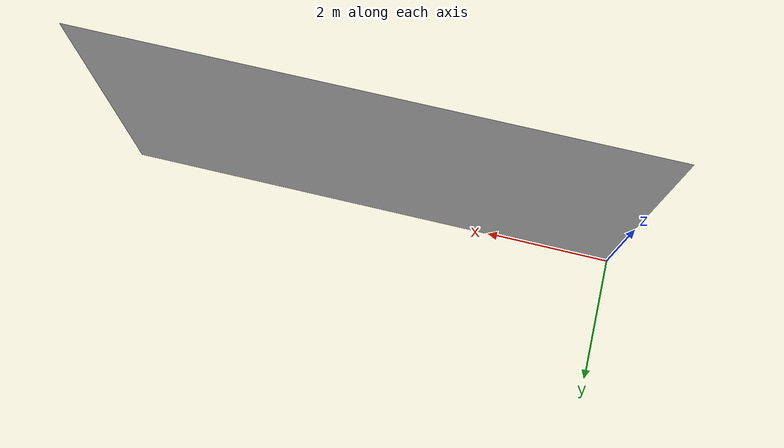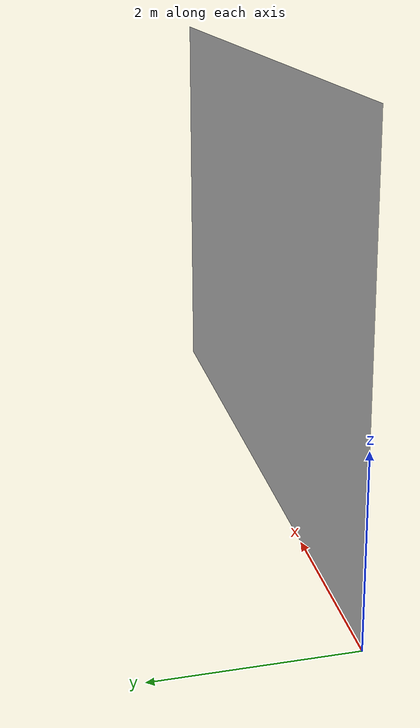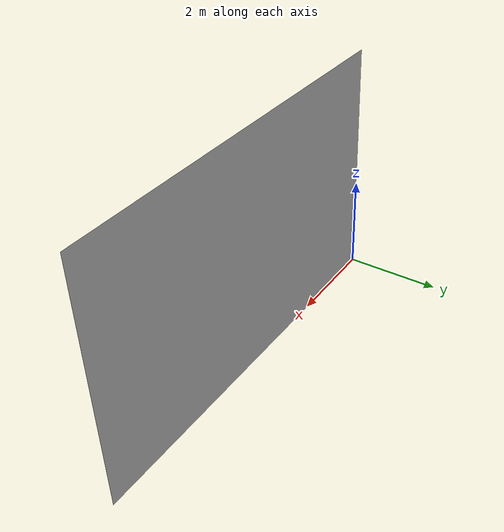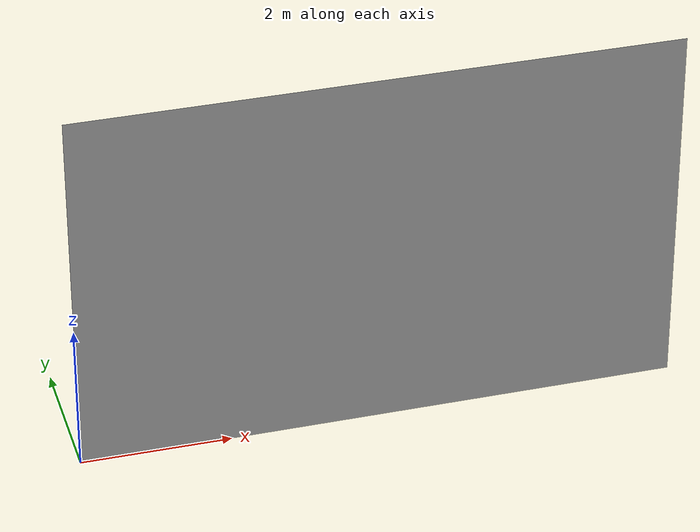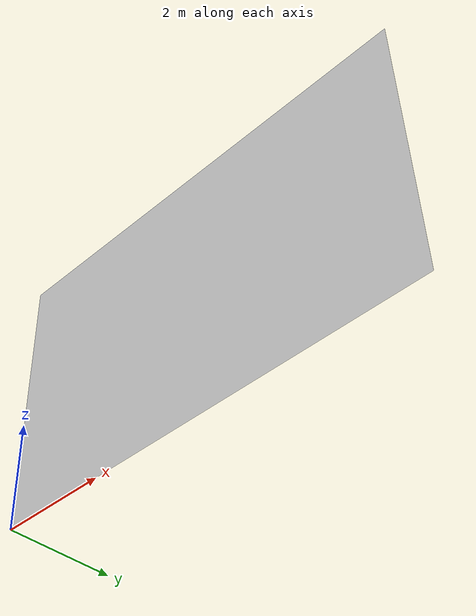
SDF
<?xml version='1.0'?>
<sdf version='1.6'>
  <model name='banner_2'>
    <link name='link_0'>
      <inertial>
        <mass>1</mass>
        <inertia>
          <ixx>0.166667</ixx>
          <ixy>0</ixy>
          <ixz>0</ixz>
          <iyy>0.166667</iyy>
          <iyz>0</iyz>
          <izz>0.166667</izz>
        </inertia>
      </inertial>
      <pose>0 0 0 0 -0 0</pose>
      <visual name='visual'>
        <pose>0 0 0 0 -0 0</pose>
        <geometry>
          <mesh>
            <uri>model://banner_2/meshes/banner.obj</uri>
            <scale>1.0 1.0 1.0</scale>
          </mesh>
        </geometry>
        <transparency>0</transparency>
        <cast_shadows>1</cast_shadows>
      </visual>
      <collision name='collision'>
        <laser_retro>0</laser_retro>
        <max_contacts>10</max_contacts>
        <pose>0 0 0 0 -0 0</pose>
        <geometry>
          <mesh>
            <uri>model://banner_2/meshes/banner.obj</uri>
            <scale>1.0 1.0 1.0</scale>
          </mesh>
        </geometry>
      </collision>
    </link>
    <static>1</static>
    <allow_auto_disable>1</allow_auto_disable>
  </model>
</sdf>
